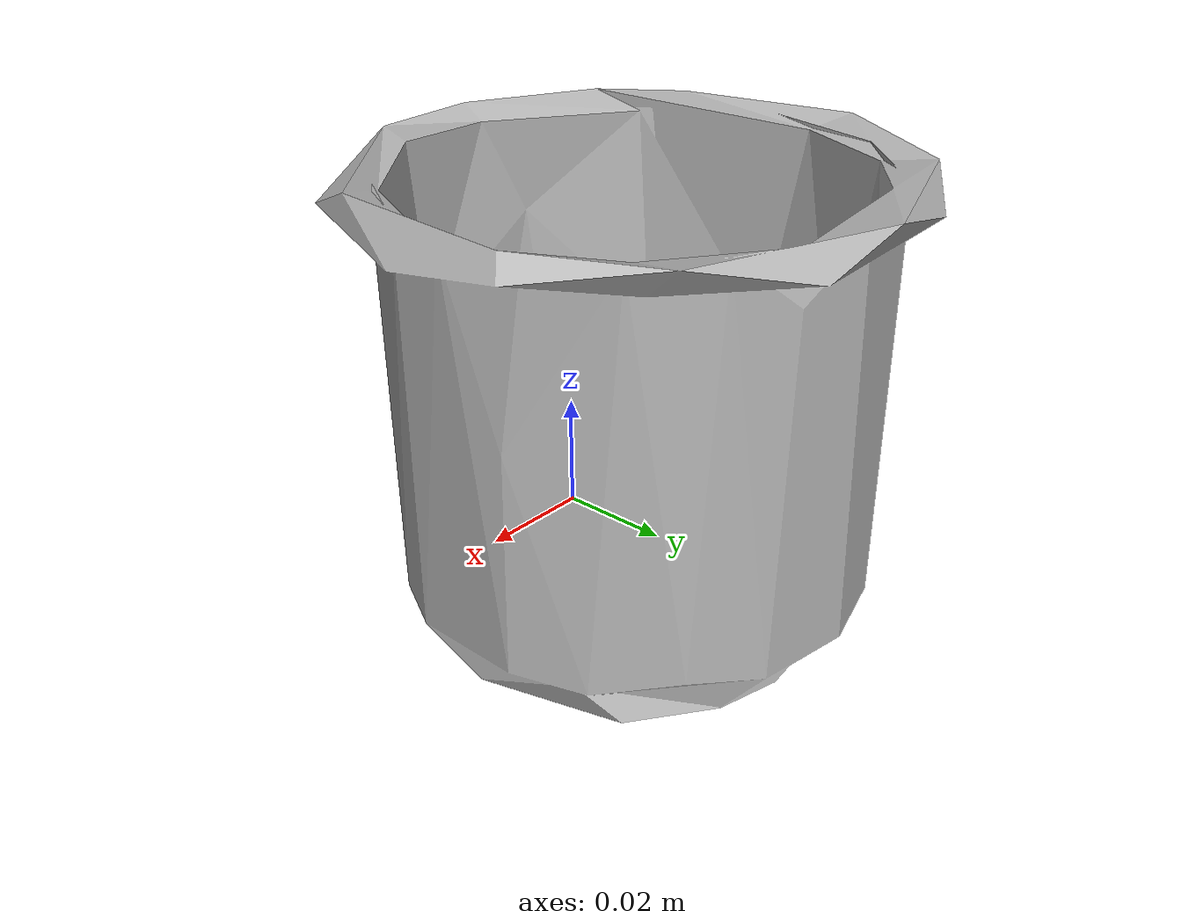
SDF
<?xml version='1.0'?>
<sdf version="1.4">
  <model name="065-g_cups">
    <static>false</static>
    <link name="link">
      <inertial>
        <pose>0.014421741106061727 0.027921763510562938 0.03888506908317335 3.1327374345587597 0.0033267999951569543 3.12185724282521</pose>
        <mass>0.03662669816331568</mass>
        <inertia>
          <ixx>3.0870136773610335e-05</ixx>
          <ixy>-3.9982455438096066e-22</ixy>
          <ixz>-1.9364089880205896e-21</ixz>
          <iyy>3.077757622507943e-05</iyy>
          <iyz>-1.078932861953629e-20</iyz>
          <izz>2.941491623228419e-05</izz>
        </inertia>
      </inertial>
      <collision name="collision">
        <geometry>
          <mesh>
            <!-- Use a downsampled mesh for collisions -->
            <uri>model:///065-g_cups/065-g_cups_250_collision.stl</uri>
	        </mesh>
        </geometry>
        <surface>
      </surface>
      </collision>
      <visual name="visual">
        <geometry>
          <mesh>
            <uri>model:///065-g_cups/textured.obj</uri>
	        </mesh>
        </geometry>
        <material>
          <script>
            <uri>model:///065-g_cups/065-g_cups.material</uri>
            <name>065-g_cups</name>
          </script>
        </material>
      </visual>
    </link>
  </model>
</sdf>
